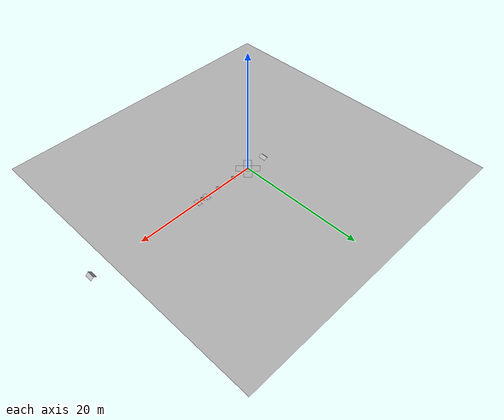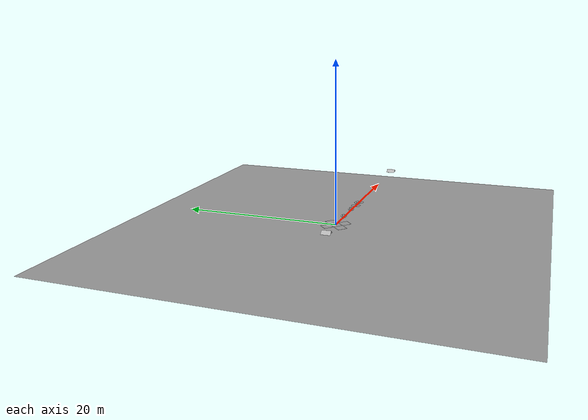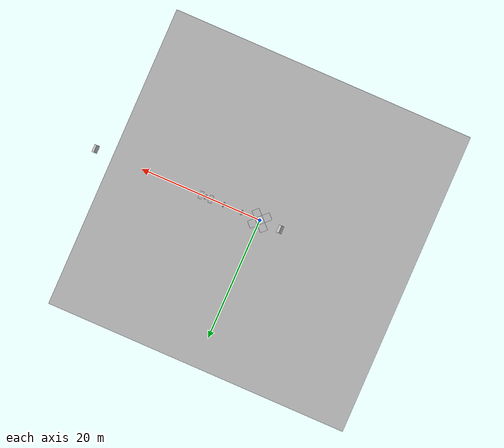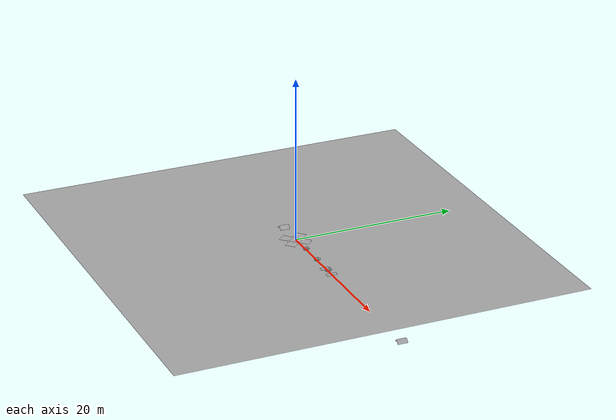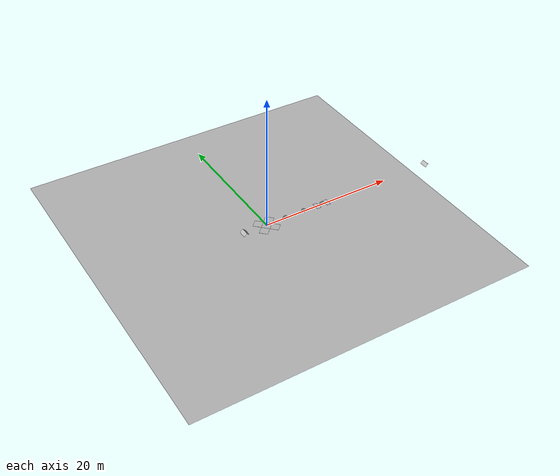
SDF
<?xml version="1.0" ?>
<sdf version="1.10">
  <world name="openlanes">
    <physics type="ode">
      <max_step_size>0.004</max_step_size>
      <real_time_factor>1.0</real_time_factor>
      <real_time_update_rate>250</real_time_update_rate>
    </physics>

    <plugin name="gz::sim::systems::Physics" filename="gz-sim-physics-system"/>
    <plugin name="gz::sim::systems::UserCommands" filename="gz-sim-user-commands-system"/>
    <plugin name="gz::sim::systems::SceneBroadcaster" filename="gz-sim-scene-broadcaster-system"/>
    <plugin name="gz::sim::systems::Contact" filename="gz-sim-contact-system"/>
    <plugin name="gz::sim::systems::Imu" filename="gz-sim-imu-system"/>
    <plugin name="gz::sim::systems::AirPressure" filename="gz-sim-air-pressure-system"/>
    <plugin name="gz::sim::systems::ApplyLinkWrench" filename="gz-sim-apply-link-wrench-system"/>
    <plugin name="gz::sim::systems::NavSat" filename="gz-sim-navsat-system"/>
    <plugin name="gz::sim::systems::Sensors" filename="gz-sim-sensors-system">
      <render_engine>ogre2</render_engine>
    </plugin>

    <gravity>0 0 -9.8</gravity>
    <magnetic_field>6e-06 2.3e-05 -4.2e-05</magnetic_field>
    <atmosphere type="adiabatic"/>
    <spherical_coordinates>
      <surface_model>EARTH_WGS84</surface_model>
      <world_frame_orientation>ENU</world_frame_orientation>
      <latitude_deg>-23.203008</latitude_deg>
      <longitude_deg>-45.874897</longitude_deg>
      <elevation>0</elevation>
    </spherical_coordinates>
    <scene>
      <ambient>0.4 0.4 0.4 1</ambient>
      <background>0.7 0.7 0.7 1</background>
      <shadows>true</shadows>
      <sky>
        <clouds />
      </sky>
    </scene>

    <light type="directional" name="sun">
      <cast_shadows>true</cast_shadows>
      <pose>0 0 20 0 0 0</pose>
      <ambient>0.8 0.8 0.8 1</ambient>
      <diffuse>1.0 1.0 1.0 1</diffuse>
      <specular>0.2 0.2 0.2 1</specular>
      <attenuation>
        <range>1000</range>
        <constant>0.9</constant>
        <linear>0.01</linear>
        <quadratic>0.001</quadratic>
      </attenuation>
      <direction>-0.5 0.1 -0.9</direction>
    </light>

    <model name="ground_plane">
      <static>true</static>
      <link name="link">
      <collision name="collision">
        <geometry>
        <plane>
          <normal>0 0 1</normal>
          <size>25 25</size>
        </plane>
        </geometry>
      </collision>
      <visual name="grass">
        <geometry>
        <mesh>
          <uri>file://grass_plane/meshes/grass_plane.dae</uri>
        </mesh>
        </geometry>
      </visual>
      </link>
    </model>

    <!-- user camera -->
    <gui>
      <camera name="camera">
        <pose>-4 -4 7 0 0.4 0.89</pose>
      </camera>
    </gui>

    <!-- MODELOS EXISTENTES -->

    <!-- OpenLanes -->
    <model name="openlanes_10ft">
      <include>
        <uri>model://openlanes_10ft</uri>
        <pose>-15.663 -0.13959 0.01 0 0 0</pose>
      </include>
    </model>

  </world>
</sdf>

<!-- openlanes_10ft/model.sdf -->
<sdf version="1.10">
  <model name="openlanes_10ft">
    <static>true</static>
    <link name="link">
      <visual name="visual">
        <geometry>
          <mesh>
            <uri>model://openlanes_10ft/meshes/OpenLanes-10ft-WithVehicle-v2020B.obj</uri>
            <scale>0.01 0.01 0.01</scale>
          </mesh>
        </geometry>
      </visual>
    </link>
  </model>
</sdf>
